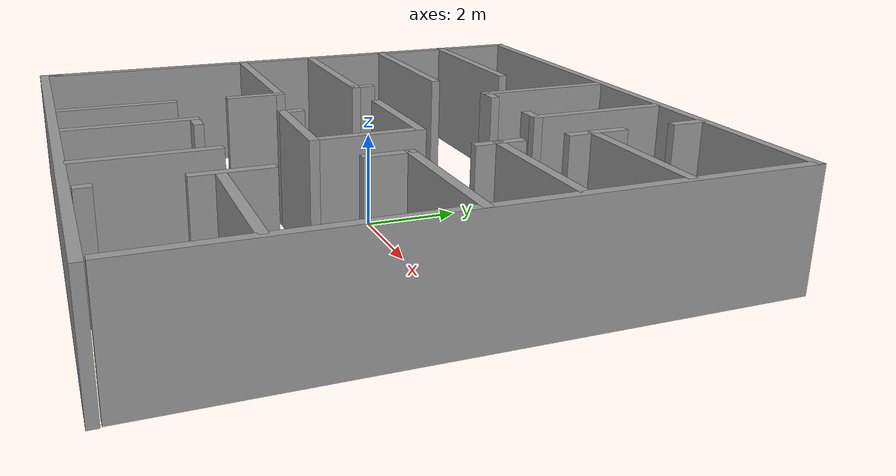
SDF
<?xml version='1.0'?>
<sdf version='1.7'>
  <model name='DB1_world1'>
    <pose>0.012998 -0.059299 0 0 -0 0</pose>
    <link name='Wall_0'>
      <collision name='Wall_0_Collision'>
        <geometry>
          <box>
            <size>2.55 0.2 2.5</size>
          </box>
        </geometry>
        <pose>0 0 1.25 0 -0 0</pose>
      </collision>
      <visual name='Wall_0_Visual'>
        <pose>0 0 1.25 0 -0 0</pose>
        <geometry>
          <box>
            <size>2.55 0.2 2.5</size>
          </box>
        </geometry>
        <material>
          <script>
            <uri>file://media/materials/scripts/gazebo.material</uri>
            <name>Gazebo/Grey</name>
          </script>
          <ambient>1 1 1 1</ambient>
        </material>
        <meta>
          <layer>0</layer>
        </meta>
      </visual>
      <pose>-2.3115 -4.8232 0 0 -0 -1.5708</pose>
    </link>
    <link name='Wall_10'>
      <collision name='Wall_10_Collision'>
        <geometry>
          <box>
            <size>1.55035 0.2 2.5</size>
          </box>
        </geometry>
        <pose>0 0 1.25 0 -0 0</pose>
      </collision>
      <visual name='Wall_10_Visual'>
        <pose>0 0 1.25 0 -0 0</pose>
        <geometry>
          <box>
            <size>1.55035 0.2 2.5</size>
          </box>
        </geometry>
        <material>
          <script>
            <uri>file://media/materials/scripts/gazebo.material</uri>
            <name>Gazebo/Grey</name>
          </script>
          <ambient>1 1 1 1</ambient>
        </material>
        <meta>
          <layer>0</layer>
        </meta>
      </visual>
      <pose>2.899 -3.4387 0 0 -0 -1.5708</pose>
    </link>
    <link name='Wall_12'>
      <collision name='Wall_12_Collision'>
        <geometry>
          <box>
            <size>3.04985 0.2 2.5</size>
          </box>
        </geometry>
        <pose>0 0 1.25 0 -0 0</pose>
      </collision>
      <visual name='Wall_12_Visual'>
        <pose>0 0 1.25 0 -0 0</pose>
        <geometry>
          <box>
            <size>3.04985 0.2 2.5</size>
          </box>
        </geometry>
        <material>
          <script>
            <uri>file://media/materials/scripts/gazebo.material</uri>
            <name>Gazebo/Grey</name>
          </script>
          <ambient>1 1 1 1</ambient>
        </material>
        <meta>
          <layer>0</layer>
        </meta>
      </visual>
      <pose>4.355 -3.6457 0 0 -0 0</pose>
    </link>
    <link name='Wall_14'>
      <collision name='Wall_14_Collision'>
        <geometry>
          <box>
            <size>1.04986 0.2 2.5</size>
          </box>
        </geometry>
        <pose>0 0 1.25 0 -0 0</pose>
      </collision>
      <visual name='Wall_14_Visual'>
        <pose>0 0 1.25 0 -0 0</pose>
        <geometry>
          <box>
            <size>1.04986 0.2 2.5</size>
          </box>
        </geometry>
        <material>
          <script>
            <uri>file://media/materials/scripts/gazebo.material</uri>
            <name>Gazebo/Grey</name>
          </script>
          <ambient>1 1 1 1</ambient>
        </material>
        <meta>
          <layer>0</layer>
        </meta>
      </visual>
      <pose>2.884 -0.603701 0 0 -0 -1.5708</pose>
    </link>
    <link name='Wall_17'>
      <collision name='Wall_17_Collision'>
        <geometry>
          <box>
            <size>3.203 0.2 2.5</size>
          </box>
        </geometry>
        <pose>0 0 1.25 0 -0 0</pose>
      </collision>
      <visual name='Wall_17_Visual'>
        <pose>0 0 1.25 0 -0 0</pose>
        <geometry>
          <box>
            <size>3.203 0.2 2.5</size>
          </box>
        </geometry>
        <material>
          <script>
            <uri>file://media/materials/scripts/gazebo.material</uri>
            <name>Gazebo/Grey</name>
          </script>
          <ambient>1 1 1 1</ambient>
        </material>
        <meta>
          <layer>0</layer>
        </meta>
      </visual>
      <pose>4.3855 -0.178701 0 0 -0 0</pose>
    </link>
    <link name='Wall_19'>
      <collision name='Wall_19_Collision'>
        <geometry>
          <box>
            <size>1.05021 0.2 2.5</size>
          </box>
        </geometry>
        <pose>0 0 1.25 0 -0 0</pose>
      </collision>
      <visual name='Wall_19_Visual'>
        <pose>0 0 1.25 0 -0 0</pose>
        <geometry>
          <box>
            <size>1.05021 0.2 2.5</size>
          </box>
        </geometry>
        <material>
          <script>
            <uri>file://media/materials/scripts/gazebo.material</uri>
            <name>Gazebo/Grey</name>
          </script>
          <ambient>1 1 1 1</ambient>
        </material>
        <meta>
          <layer>0</layer>
        </meta>
      </visual>
      <pose>2.891 1.5853 0 0 -0 -1.5708</pose>
    </link>
    <link name='Wall_2'>
      <collision name='Wall_2_Collision'>
        <geometry>
          <box>
            <size>0.6025 0.2 2.5</size>
          </box>
        </geometry>
        <pose>0 0 1.25 0 -0 0</pose>
      </collision>
      <visual name='Wall_2_Visual'>
        <pose>0 0 1.25 0 -0 0</pose>
        <geometry>
          <box>
            <size>0.6025 0.2 2.5</size>
          </box>
        </geometry>
        <material>
          <script>
            <uri>file://media/materials/scripts/gazebo.material</uri>
            <name>Gazebo/Grey</name>
          </script>
          <ambient>1 1 1 1</ambient>
        </material>
        <meta>
          <layer>0</layer>
        </meta>
      </visual>
      <pose>-0.511748 -3.4417 0 0 -0 3.14159</pose>
    </link>
    <link name='Wall_21'>
      <collision name='Wall_21_Collision'>
        <geometry>
          <box>
            <size>3.04983 0.2 2.5</size>
          </box>
        </geometry>
        <pose>0 0 1.25 0 -0 0</pose>
      </collision>
      <visual name='Wall_21_Visual'>
        <pose>0 0 1.25 0 -0 0</pose>
        <geometry>
          <box>
            <size>3.04983 0.2 2.5</size>
          </box>
        </geometry>
        <material>
          <script>
            <uri>file://media/materials/scripts/gazebo.material</uri>
            <name>Gazebo/Grey</name>
          </script>
          <ambient>1 1 1 1</ambient>
        </material>
        <meta>
          <layer>0</layer>
        </meta>
      </visual>
      <pose>4.351 1.5733 0 0 -0 0</pose>
    </link>
    <link name='Wall_23'>
      <collision name='Wall_23_Collision'>
        <geometry>
          <box>
            <size>1.29997 0.2 2.5</size>
          </box>
        </geometry>
        <pose>0 0 1.25 0 -0 0</pose>
      </collision>
      <visual name='Wall_23_Visual'>
        <pose>0 0 1.25 0 -0 0</pose>
        <geometry>
          <box>
            <size>1.29997 0.2 2.5</size>
          </box>
        </geometry>
        <material>
          <script>
            <uri>file://media/materials/scripts/gazebo.material</uri>
            <name>Gazebo/Grey</name>
          </script>
          <ambient>1 1 1 1</ambient>
        </material>
        <meta>
          <layer>0</layer>
        </meta>
      </visual>
      <pose>2.891 3.6813 0 0 -0 -1.5708</pose>
    </link>
    <link name='Wall_25'>
      <collision name='Wall_25_Collision'>
        <geometry>
          <box>
            <size>3.05032 0.2 2.5</size>
          </box>
        </geometry>
        <pose>0 0 1.25 0 -0 0</pose>
      </collision>
      <visual name='Wall_25_Visual'>
        <pose>0 0 1.25 0 -0 0</pose>
        <geometry>
          <box>
            <size>3.05032 0.2 2.5</size>
          </box>
        </geometry>
        <material>
          <script>
            <uri>file://media/materials/scripts/gazebo.material</uri>
            <name>Gazebo/Grey</name>
          </script>
          <ambient>1 1 1 1</ambient>
        </material>
        <meta>
          <layer>0</layer>
        </meta>
      </visual>
      <pose>4.368 3.6013 0 0 -0 0</pose>
    </link>
    <link name='Wall_27'>
      <collision name='Wall_27_Collision'>
        <geometry>
          <box>
            <size>2.54996 0.2 2.5</size>
          </box>
        </geometry>
        <pose>0 0 1.25 0 -0 0</pose>
      </collision>
      <visual name='Wall_27_Visual'>
        <pose>0 0 1.25 0 -0 0</pose>
        <geometry>
          <box>
            <size>2.54996 0.2 2.5</size>
          </box>
        </geometry>
        <material>
          <script>
            <uri>file://media/materials/scripts/gazebo.material</uri>
            <name>Gazebo/Grey</name>
          </script>
          <ambient>1 1 1 1</ambient>
        </material>
        <meta>
          <layer>0</layer>
        </meta>
      </visual>
      <pose>0.358002 0.558299 0 0 -0 0</pose>
    </link>
    <link name='Wall_29'>
      <collision name='Wall_29_Collision'>
        <geometry>
          <box>
            <size>2.37 0.2 2.5</size>
          </box>
        </geometry>
        <pose>0 0 1.25 0 -0 0</pose>
      </collision>
      <visual name='Wall_29_Visual'>
        <pose>0 0 1.25 0 -0 0</pose>
        <geometry>
          <box>
            <size>2.37 0.2 2.5</size>
          </box>
        </geometry>
        <material>
          <script>
            <uri>file://media/materials/scripts/gazebo.material</uri>
            <name>Gazebo/Grey</name>
          </script>
          <ambient>1 1 1 1</ambient>
        </material>
        <meta>
          <layer>0</layer>
        </meta>
      </visual>
      <pose>1.533 -0.526701 0 0 -0 -1.5708</pose>
    </link>
    <link name='Wall_31'>
      <collision name='Wall_31_Collision'>
        <geometry>
          <box>
            <size>2.386 0.2 2.5</size>
          </box>
        </geometry>
        <pose>0 0 1.25 0 -0 0</pose>
      </collision>
      <visual name='Wall_31_Visual'>
        <pose>0 0 1.25 0 -0 0</pose>
        <geometry>
          <box>
            <size>2.386 0.2 2.5</size>
          </box>
        </geometry>
        <material>
          <script>
            <uri>file://media/materials/scripts/gazebo.material</uri>
            <name>Gazebo/Grey</name>
          </script>
          <ambient>1 1 1 1</ambient>
        </material>
        <meta>
          <layer>0</layer>
        </meta>
      </visual>
      <pose>0.440002 -1.6117 0 0 -0 3.14159</pose>
    </link>
    <link name='Wall_36'>
      <collision name='Wall_36_Collision'>
        <geometry>
          <box>
            <size>0.55 0.2 2.5</size>
          </box>
        </geometry>
        <pose>0 0 1.25 0 -0 0</pose>
      </collision>
      <visual name='Wall_36_Visual'>
        <pose>0 0 1.25 0 -0 0</pose>
        <geometry>
          <box>
            <size>0.55 0.2 2.5</size>
          </box>
        </geometry>
        <material>
          <script>
            <uri>file://media/materials/scripts/gazebo.material</uri>
            <name>Gazebo/Grey</name>
          </script>
          <ambient>1 1 1 1</ambient>
        </material>
        <meta>
          <layer>0</layer>
        </meta>
      </visual>
      <pose>-0.652998 -1.4367 0 0 -0 1.5708</pose>
    </link>
    <link name='Wall_38'>
      <collision name='Wall_38_Collision'>
        <geometry>
          <box>
            <size>3.80031 0.2 2.5</size>
          </box>
        </geometry>
        <pose>0 0 1.25 0 -0 0</pose>
      </collision>
      <visual name='Wall_38_Visual'>
        <pose>0 0 1.25 0 -0 0</pose>
        <geometry>
          <box>
            <size>3.80031 0.2 2.5</size>
          </box>
        </geometry>
        <material>
          <script>
            <uri>file://media/materials/scripts/gazebo.material</uri>
            <name>Gazebo/Grey</name>
          </script>
          <ambient>1 1 1 1</ambient>
        </material>
        <meta>
          <layer>0</layer>
        </meta>
      </visual>
      <pose>-4.037 -1.2607 0 0 -0 0</pose>
    </link>
    <link name='Wall_4'>
      <collision name='Wall_4_Collision'>
        <geometry>
          <box>
            <size>2.8 0.2 2.5</size>
          </box>
        </geometry>
        <pose>0 0 1.25 0 -0 0</pose>
      </collision>
      <visual name='Wall_4_Visual'>
        <pose>0 0 1.25 0 -0 0</pose>
        <geometry>
          <box>
            <size>2.8 0.2 2.5</size>
          </box>
        </geometry>
        <material>
          <script>
            <uri>file://media/materials/scripts/gazebo.material</uri>
            <name>Gazebo/Grey</name>
          </script>
          <ambient>1 1 1 1</ambient>
        </material>
        <meta>
          <layer>0</layer>
        </meta>
      </visual>
      <pose>-0.712998 -4.7417 0 0 -0 -1.5708</pose>
    </link>
    <link name='Wall_40'>
      <collision name='Wall_40_Collision'>
        <geometry>
          <box>
            <size>1.3 0.2 2.5</size>
          </box>
        </geometry>
        <pose>0 0 1.25 0 -0 0</pose>
      </collision>
      <visual name='Wall_40_Visual'>
        <pose>0 0 1.25 0 -0 0</pose>
        <geometry>
          <box>
            <size>1.3 0.2 2.5</size>
          </box>
        </geometry>
        <material>
          <script>
            <uri>file://media/materials/scripts/gazebo.material</uri>
            <name>Gazebo/Grey</name>
          </script>
          <ambient>1 1 1 1</ambient>
        </material>
        <meta>
          <layer>0</layer>
        </meta>
      </visual>
      <pose>-2.237 -1.8107 0 0 -0 -1.5708</pose>
    </link>
    <link name='Wall_42'>
      <collision name='Wall_42_Collision'>
        <geometry>
          <box>
            <size>3.80035 0.2 2.5</size>
          </box>
        </geometry>
        <pose>0 0 1.25 0 -0 0</pose>
      </collision>
      <visual name='Wall_42_Visual'>
        <pose>0 0 1.25 0 -0 0</pose>
        <geometry>
          <box>
            <size>3.80035 0.2 2.5</size>
          </box>
        </geometry>
        <material>
          <script>
            <uri>file://media/materials/scripts/gazebo.material</uri>
            <name>Gazebo/Grey</name>
          </script>
          <ambient>1 1 1 1</ambient>
        </material>
        <meta>
          <layer>0</layer>
        </meta>
      </visual>
      <pose>-4.107 0.558299 0 0 -0 0</pose>
    </link>
    <link name='Wall_44'>
      <collision name='Wall_44_Collision'>
        <geometry>
          <box>
            <size>0.55 0.2 2.5</size>
          </box>
        </geometry>
        <pose>0 0 1.25 0 -0 0</pose>
      </collision>
      <visual name='Wall_44_Visual'>
        <pose>0 0 1.25 0 -0 0</pose>
        <geometry>
          <box>
            <size>0.55 0.2 2.5</size>
          </box>
        </geometry>
        <material>
          <script>
            <uri>file://media/materials/scripts/gazebo.material</uri>
            <name>Gazebo/Grey</name>
          </script>
          <ambient>1 1 1 1</ambient>
        </material>
        <meta>
          <layer>0</layer>
        </meta>
      </visual>
      <pose>-2.307 0.733299 0 0 -0 1.5708</pose>
    </link>
    <link name='Wall_46'>
      <collision name='Wall_46_Collision'>
        <geometry>
          <box>
            <size>3.80035 0.2 2.5</size>
          </box>
        </geometry>
        <pose>0 0 1.25 0 -0 0</pose>
      </collision>
      <visual name='Wall_46_Visual'>
        <pose>0 0 1.25 0 -0 0</pose>
        <geometry>
          <box>
            <size>3.80035 0.2 2.5</size>
          </box>
        </geometry>
        <material>
          <script>
            <uri>file://media/materials/scripts/gazebo.material</uri>
            <name>Gazebo/Grey</name>
          </script>
          <ambient>1 1 1 1</ambient>
        </material>
        <meta>
          <layer>0</layer>
        </meta>
      </visual>
      <pose>-4.107 2.5523 0 0 -0 0</pose>
    </link>
    <link name='Wall_48'>
      <collision name='Wall_48_Collision'>
        <geometry>
          <box>
            <size>3.79986 0.2 2.5</size>
          </box>
        </geometry>
        <pose>0 0 1.25 0 -0 0</pose>
      </collision>
      <visual name='Wall_48_Visual'>
        <pose>0 0 1.25 0 -0 0</pose>
        <geometry>
          <box>
            <size>3.79986 0.2 2.5</size>
          </box>
        </geometry>
        <material>
          <script>
            <uri>file://media/materials/scripts/gazebo.material</uri>
            <name>Gazebo/Grey</name>
          </script>
          <ambient>1 1 1 1</ambient>
        </material>
        <meta>
          <layer>0</layer>
        </meta>
      </visual>
      <pose>-4.124 4.3363 0 0 -0 0</pose>
    </link>
    <link name='Wall_51'>
      <collision name='Wall_51_Collision'>
        <geometry>
          <box>
            <size>3.04972 0.2 2.5</size>
          </box>
        </geometry>
        <pose>0 0 1.25 0 -0 0</pose>
      </collision>
      <visual name='Wall_51_Visual'>
        <pose>0 0 1.25 0 -0 0</pose>
        <geometry>
          <box>
            <size>3.04972 0.2 2.5</size>
          </box>
        </geometry>
        <material>
          <script>
            <uri>file://media/materials/scripts/gazebo.material</uri>
            <name>Gazebo/Grey</name>
          </script>
          <ambient>1 1 1 1</ambient>
        </material>
        <meta>
          <layer>0</layer>
        </meta>
      </visual>
      <pose>-0.710998 4.5543 0 0 -0 1.5708</pose>
    </link>
    <link name='Wall_54'>
      <collision name='Wall_54_Collision'>
        <geometry>
          <box>
            <size>3.05046 0.2 2.5</size>
          </box>
        </geometry>
        <pose>0 0 1.25 0 -0 0</pose>
      </collision>
      <visual name='Wall_54_Visual'>
        <pose>0 0 1.25 0 -0 0</pose>
        <geometry>
          <box>
            <size>3.05046 0.2 2.5</size>
          </box>
        </geometry>
        <material>
          <script>
            <uri>file://media/materials/scripts/gazebo.material</uri>
            <name>Gazebo/Grey</name>
          </script>
          <ambient>1 1 1 1</ambient>
        </material>
        <meta>
          <layer>0</layer>
        </meta>
      </visual>
      <pose>1.496 4.5773 0 0 -0 -1.5708</pose>
    </link>
    <link name='Wall_56'>
      <collision name='Wall_56_Collision'>
        <geometry>
          <box>
            <size>0.55 0.2 2.5</size>
          </box>
        </geometry>
        <pose>0 0 1.25 0 -0 0</pose>
      </collision>
      <visual name='Wall_56_Visual'>
        <pose>0 0 1.25 0 -0 0</pose>
        <geometry>
          <box>
            <size>0.55 0.2 2.5</size>
          </box>
        </geometry>
        <material>
          <script>
            <uri>file://media/materials/scripts/gazebo.material</uri>
            <name>Gazebo/Grey</name>
          </script>
          <ambient>1 1 1 1</ambient>
        </material>
        <meta>
          <layer>0</layer>
        </meta>
      </visual>
      <pose>-0.535998 3.1293 0 0 -0 0</pose>
    </link>
    <link name='Wall_6'>
      <collision name='Wall_6_Collision'>
        <geometry>
          <box>
            <size>2.7999 0.2 2.5</size>
          </box>
        </geometry>
        <pose>0 0 1.25 0 -0 0</pose>
      </collision>
      <visual name='Wall_6_Visual'>
        <pose>0 0 1.25 0 -0 0</pose>
        <geometry>
          <box>
            <size>2.7999 0.2 2.5</size>
          </box>
        </geometry>
        <material>
          <script>
            <uri>file://media/materials/scripts/gazebo.material</uri>
            <name>Gazebo/Grey</name>
          </script>
          <ambient>1 1 1 1</ambient>
        </material>
        <meta>
          <layer>0</layer>
        </meta>
      </visual>
      <pose>1.485 -4.6877 0 0 -0 -1.5708</pose>
    </link>
    <link name='Wall_60'>
      <collision name='Wall_60_Collision'>
        <geometry>
          <box>
            <size>0.55 0.2 2.5</size>
          </box>
        </geometry>
        <pose>0 0 1.25 0 -0 0</pose>
      </collision>
      <visual name='Wall_60_Visual'>
        <pose>0 0 1.25 0 -0 0</pose>
        <geometry>
          <box>
            <size>0.55 0.2 2.5</size>
          </box>
        </geometry>
        <material>
          <script>
            <uri>file://media/materials/scripts/gazebo.material</uri>
            <name>Gazebo/Grey</name>
          </script>
          <ambient>1 1 1 1</ambient>
        </material>
        <meta>
          <layer>0</layer>
        </meta>
      </visual>
      <pose>1.321 3.1523 0 0 -0 3.14159</pose>
    </link>
    <link name='Wall_62'>
      <collision name='Wall_62_Collision'>
        <geometry>
          <box>
            <size>0.800137 0.2 2.5</size>
          </box>
        </geometry>
        <pose>0 0 1.25 0 -0 0</pose>
      </collision>
      <visual name='Wall_62_Visual'>
        <pose>0 0 1.25 0 -0 0</pose>
        <geometry>
          <box>
            <size>0.800137 0.2 2.5</size>
          </box>
        </geometry>
        <material>
          <script>
            <uri>file://media/materials/scripts/gazebo.material</uri>
            <name>Gazebo/Grey</name>
          </script>
          <ambient>1 1 1 1</ambient>
        </material>
        <meta>
          <layer>0</layer>
        </meta>
      </visual>
      <pose>2.906 5.7963 0 0 -0 1.5708</pose>
    </link>
    <link name='Wall_64'>
      <collision name='Wall_64_Collision'>
        <geometry>
          <box>
            <size>12.4968 0.2 2.5</size>
          </box>
        </geometry>
        <pose>0 0 1.25 0 -0 0</pose>
      </collision>
      <visual name='Wall_64_Visual'>
        <pose>0 0 1.25 0 -0 0</pose>
        <geometry>
          <box>
            <size>12.4968 0.2 2.5</size>
          </box>
        </geometry>
        <material>
          <script>
            <uri>file://media/materials/scripts/gazebo.material</uri>
            <name>Gazebo/Grey</name>
          </script>
          <ambient>1 1 1 1</ambient>
        </material>
        <meta>
          <layer>0</layer>
        </meta>
      </visual>
      <pose>-5.925 -0.013301 0 0 -0 -1.5708</pose>
    </link>
    <link name='Wall_65'>
      <collision name='Wall_65_Collision'>
        <geometry>
          <box>
            <size>0.5 0.15 2.5</size>
          </box>
        </geometry>
        <pose>0 0 1.25 0 -0 0</pose>
      </collision>
      <visual name='Wall_65_Visual'>
        <pose>0 0 1.25 0 -0 0</pose>
        <geometry>
          <box>
            <size>0.5 0.15 2.5</size>
          </box>
        </geometry>
        <material>
          <script>
            <uri>file://media/materials/scripts/gazebo.material</uri>
            <name>Gazebo/Grey</name>
          </script>
          <ambient>1 1 1 1</ambient>
        </material>
        <meta>
          <layer>0</layer>
        </meta>
      </visual>
      <pose>-5.92501 -5.98683 0 0 -0 1.57086</pose>
    </link>
    <link name='Wall_67'>
      <collision name='Wall_67_Collision'>
        <geometry>
          <box>
            <size>11.9968 0.2 2.5</size>
          </box>
        </geometry>
        <pose>0 0 1.25 0 -0 0</pose>
      </collision>
      <visual name='Wall_67_Visual'>
        <pose>0 0 1.25 0 -0 0</pose>
        <geometry>
          <box>
            <size>11.9968 0.2 2.5</size>
          </box>
        </geometry>
        <material>
          <script>
            <uri>file://media/materials/scripts/gazebo.material</uri>
            <name>Gazebo/Grey</name>
          </script>
          <ambient>1 1 1 1</ambient>
        </material>
        <meta>
          <layer>0</layer>
        </meta>
      </visual>
      <pose>-0.026599 6.1615 0 0 -0 -3.4e-05</pose>
    </link>
    <link name='Wall_69'>
      <collision name='Wall_69_Collision'>
        <geometry>
          <box>
            <size>12.2996 0.2 2.5</size>
          </box>
        </geometry>
        <pose>0 0 1.25 0 -0 0</pose>
      </collision>
      <visual name='Wall_69_Visual'>
        <pose>0 0 1.25 0 -0 0</pose>
        <geometry>
          <box>
            <size>12.2996 0.2 2.5</size>
          </box>
        </geometry>
        <material>
          <script>
            <uri>file://media/materials/scripts/gazebo.material</uri>
            <name>Gazebo/Grey</name>
          </script>
          <ambient>1 1 1 1</ambient>
        </material>
        <meta>
          <layer>0</layer>
        </meta>
      </visual>
      <pose>5.8984 0.111299 0 0 -0 -1.5708</pose>
    </link>
    <link name='Wall_71'>
      <collision name='Wall_71_Collision'>
        <geometry>
          <box>
            <size>12.05 0.2 2.5</size>
          </box>
        </geometry>
        <pose>0 0 1.25 0 -0 0</pose>
      </collision>
      <visual name='Wall_71_Visual'>
        <pose>0 0 1.25 0 -0 0</pose>
        <geometry>
          <box>
            <size>12.05 0.2 2.5</size>
          </box>
        </geometry>
        <material>
          <script>
            <uri>file://media/materials/scripts/gazebo.material</uri>
            <name>Gazebo/Grey</name>
          </script>
          <ambient>1 1 1 1</ambient>
        </material>
        <meta>
          <layer>0</layer>
        </meta>
      </visual>
      <pose>2e-06 -6.1617 0 0 -0 0</pose>
    </link>
    <link name='Wall_8'>
      <collision name='Wall_8_Collision'>
        <geometry>
          <box>
            <size>0.32 0.2 2.5</size>
          </box>
        </geometry>
        <pose>0 0 1.25 0 -0 0</pose>
      </collision>
      <visual name='Wall_8_Visual'>
        <pose>0 0 1.25 0 -0 0</pose>
        <geometry>
          <box>
            <size>0.32 0.2 2.5</size>
          </box>
        </geometry>
        <material>
          <script>
            <uri>file://media/materials/scripts/gazebo.material</uri>
            <name>Gazebo/Grey</name>
          </script>
          <ambient>1 1 1 1</ambient>
        </material>
        <meta>
          <layer>0</layer>
        </meta>
      </visual>
      <pose>2.899 -5.8807 0 0 -0 -1.5708</pose>
    </link>
    <static>1</static>
  </model>
</sdf>
